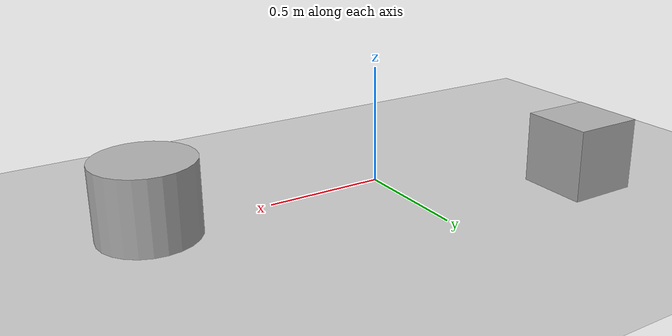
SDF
<?xml version="1.0"?>
<sdf version="1.8">
  <world name="demo">
    <plugin name='gz::sim::systems::Physics' filename='gz-sim-physics-system' />
    <plugin name='gz::sim::systems::UserCommands' filename='gz-sim-user-commands-system' />
    <plugin name='gz::sim::systems::SceneBroadcaster' filename='gz-sim-scene-broadcaster-system' />
    <plugin name='gz::sim::systems::Contact' filename='gz-sim-contact-system' />
    <plugin name='gz::sim::systems::Sensors' filename='gz-sim-sensors-system'>
      <render_engine>ogre2</render_engine>
    </plugin>

    <light name="sun" type="directional">
      <cast_shadows>true</cast_shadows>
      <pose>0 0 10 0 0 0</pose>
      <diffuse>0.8 0.8 0.8 1</diffuse>
      <specular>0.2 0.2 0.2 1</specular>
      <attenuation>
        <range>1000</range>
        <constant>0.9</constant>
        <linear>0.01</linear>
        <quadratic>0.001</quadratic>
      </attenuation>
      <direction>-0.5 0.1 -0.9</direction>
    </light>

    <model name="ground_plane">
      <static>true</static>
      <link name="link">
        <collision name="collision">
          <geometry>
            <plane>
              <normal>0 0 1</normal>
              <size>100 100</size>
            </plane>
          </geometry>
        </collision>
        <visual name="visual">
          <geometry>
            <plane>
              <normal>0 0 1</normal>
              <size>100 100</size>
            </plane>
          </geometry>
          <material>
            <ambient>0.8 0.8 0.8 1</ambient>
            <diffuse>0.8 0.8 0.8 1</diffuse>
            <specular>0.8 0.8 0.8 1</specular>
          </material>
        </visual>
      </link>
    </model>

    <model name='cylinder'>
      <pose>1.0 0.0 0.15 0 0 0</pose>
      <link name='cylinder_link'>
        <inertial>
          <inertia>
            <ixx>0.145</ixx>
            <ixy>0</ixy>
            <ixz>0</ixz>
            <iyy>0.145</iyy>
            <iyz>0</iyz>
            <izz>0.125</izz>
          </inertia>
          <mass>1</mass>
          <pose>0 0 0 0 0 0</pose>
        </inertial>
        <collision name='cylinder_collision'>
          <geometry>
            <cylinder>
              <radius>0.2</radius>
              <length>0.3</length>
            </cylinder>
          </geometry>
          <surface>
            <friction>
              <ode/>
            </friction>
            <bounce/>
            <contact/>
          </surface>
        </collision>
        <visual name='cylinder_visual'>
          <geometry>
            <cylinder>
              <radius>0.2</radius>
              <length>0.3</length>
            </cylinder>
          </geometry>
          <material>
            <ambient>0.300000012 0.300000012 0.300000012 1</ambient>
            <diffuse>0.699999988 0.699999988 0.699999988 1</diffuse>
            <specular>1 1 1 1</specular>
          </material>
        </visual>
        <pose>0 0 0 0 0 0</pose>
        <enable_wind>false</enable_wind>
      </link>
      <static>false</static>
      <self_collide>false</self_collide>
    </model>
    <model name='box'>
      <pose>-0.7 0.5 0.15 0 0 0</pose>
      <link name='box_link'>
        <inertial>
          <inertia>
            <ixx>0.16666</ixx>
            <ixy>0</ixy>
            <ixz>0</ixz>
            <iyy>0.16666</iyy>
            <iyz>0</iyz>
            <izz>0.16666</izz>
          </inertia>
          <mass>1</mass>
          <pose>0 0 0 0 0 0</pose>
        </inertial>
        <collision name='box_collision'>
          <geometry>
            <box>
              <size>0.3 0.3 0.3</size>
            </box>
          </geometry>
          <surface>
            <friction>
              <ode/>
            </friction>
            <bounce/>
            <contact/>
          </surface>
        </collision>
        <visual name='box_visual'>
          <geometry>
            <box>
              <size>0.3 0.3 0.3</size>
            </box>
          </geometry>
          <material>
            <ambient>0.300000012 0.300000012 0.300000012 1</ambient>
            <diffuse>0.699999988 0.699999988 0.699999988 1</diffuse>
            <specular>1 1 1 1</specular>
          </material>
        </visual>
        <pose>0 0 0 0 0 0</pose>
        <enable_wind>false</enable_wind>
      </link>
      <static>false</static>
      <self_collide>false</self_collide>
    </model>

  </world>
</sdf>
